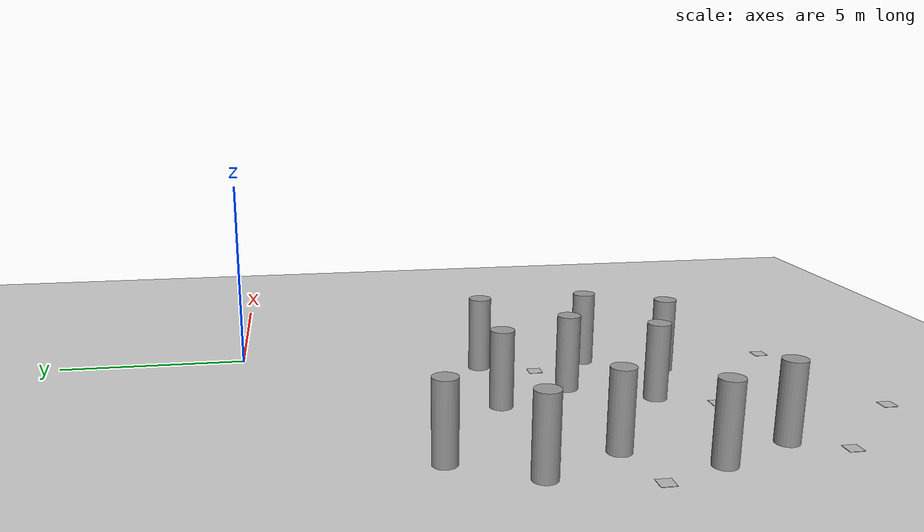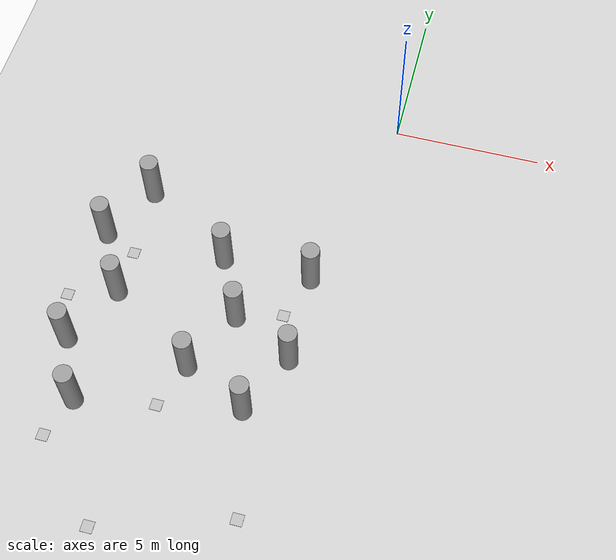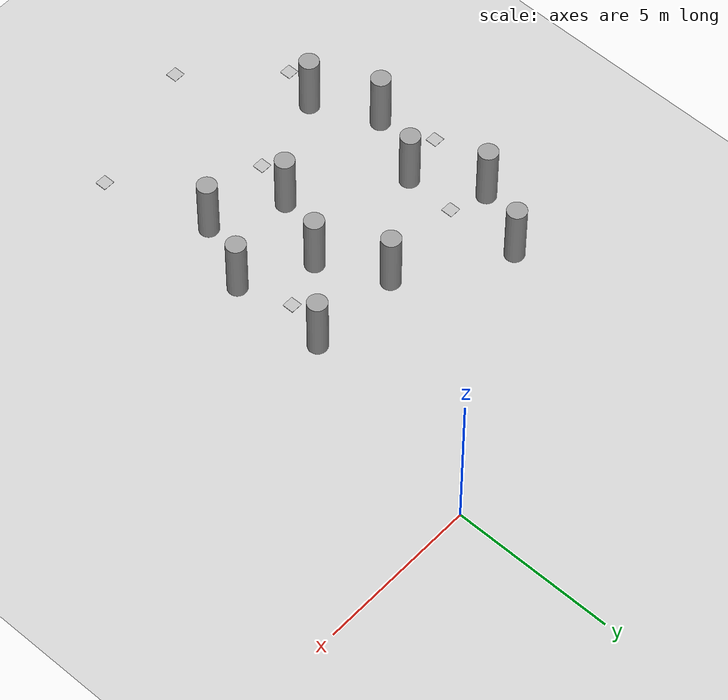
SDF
<sdf version="1.7">
 <world name="default">
  <model name="ground_plane">
   <static>1</static>
   <link name="link">
    <collision name="collision">
     <geometry><plane><normal>0 0 1</normal><size>100 100</size></plane></geometry>
     <surface>
      <contact><collide_bitmask>65535</collide_bitmask></contact>
      <friction><ode><mu>100</mu><mu2>50</mu2></ode></friction>
     </surface>
    </collision>
    <visual name="visual">
     <cast_shadows>0</cast_shadows>
     <geometry><plane><normal>0 0 1</normal><size>100 100</size></plane></geometry>
     <material>
      <script><uri>file://media/materials/scripts/gazebo.material</uri><name>Gazebo/Grey</name></script>
     </material>
    </visual>
   </link>
  </model>
  <model name="SAFMC_Pillar_clone_2_clone_clone">
   <link name="link_3">
    <inertial>
     <mass>1</mass>
     <inertia><ixx>0.145833</ixx><ixy>0</ixy><ixz>0</ixz><iyy>0.145833</iyy><iyz>0</iyz><izz>0.125</izz></inertia>
    </inertial>
    <visual name="visual">
     <geometry><cylinder><radius>0.3</radius><length>2</length></cylinder></geometry>
     <material>
      <lighting>1</lighting>
      <script><uri>file://media/materials/scripts/gazebo.material</uri><name>Gazebo/Grey</name></script>
      <shader type="pixel"><normal_map>__default__</normal_map></shader>
      <ambient>0.3 0.3 0.3 1</ambient>
      <diffuse>0.7 0.7 0.7 1</diffuse>
      <specular>0.01 0.01 0.01 1</specular>
      <emissive>0 0 0 1</emissive>
     </material>
    </visual>
    <collision name="collision">
     <geometry><cylinder><radius>0.3</radius><length>2</length></cylinder></geometry>
     <surface>
      <friction>
       <ode><mu>1</mu><mu2>1</mu2><fdir1>0 0 0</fdir1><slip1>0</slip1><slip2>0</slip2></ode>
       <torsional>
        <coefficient>1</coefficient>
        <patch_radius>0</patch_radius>
        <surface_radius>0</surface_radius>
        <use_patch_radius>1</use_patch_radius>
        <ode><slip>0</slip></ode>
       </torsional>
      </friction>
      <bounce><restitution_coefficient>0</restitution_coefficient><threshold>1e+06</threshold></bounce>
      <contact>
       <collide_without_contact>0</collide_without_contact>
       <collide_without_contact_bitmask>1</collide_without_contact_bitmask>
       <collide_bitmask>1</collide_bitmask>
       <ode>
        <soft_cfm>0</soft_cfm>
        <soft_erp>0.2</soft_erp>
        <kp>1e+13</kp>
        <kd>1</kd>
        <max_vel>0.01</max_vel>
        <min_depth>0</min_depth>
       </ode>
       <bullet>
        <split_impulse>1</split_impulse>
        <split_impulse_penetration_threshold>-0.01</split_impulse_penetration_threshold>
        <soft_cfm>0</soft_cfm>
        <soft_erp>0.2</soft_erp>
        <kp>1e+13</kp>
        <kd>1</kd>
       </bullet>
      </contact>
     </surface>
    </collision>
   </link>
   <static>0</static>
   <pose>-8.45289 -10.5187 0.99999 0 -0 -0.001854</pose>
  </model>
  <model name="SAFMC_Pillar_clone_2_clone_clone_2">
   <link name="link_3">
    <inertial>
     <mass>1</mass>
     <inertia><ixx>0.145833</ixx><ixy>0</ixy><ixz>0</ixz><iyy>0.145833</iyy><iyz>0</iyz><izz>0.125</izz></inertia>
    </inertial>
    <visual name="visual">
     <geometry><cylinder><radius>0.3</radius><length>2</length></cylinder></geometry>
     <material>
      <lighting>1</lighting>
      <script><uri>file://media/materials/scripts/gazebo.material</uri><name>Gazebo/Grey</name></script>
      <shader type="pixel"><normal_map>__default__</normal_map></shader>
      <ambient>0.3 0.3 0.3 1</ambient>
      <diffuse>0.7 0.7 0.7 1</diffuse>
      <specular>0.01 0.01 0.01 1</specular>
      <emissive>0 0 0 1</emissive>
     </material>
    </visual>
    <collision name="collision">
     <geometry><cylinder><radius>0.3</radius><length>2</length></cylinder></geometry>
     <surface>
      <friction>
       <ode><mu>1</mu><mu2>1</mu2><fdir1>0 0 0</fdir1><slip1>0</slip1><slip2>0</slip2></ode>
       <torsional>
        <coefficient>1</coefficient>
        <patch_radius>0</patch_radius>
        <surface_radius>0</surface_radius>
        <use_patch_radius>1</use_patch_radius>
        <ode><slip>0</slip></ode>
       </torsional>
      </friction>
      <bounce><restitution_coefficient>0</restitution_coefficient><threshold>1e+06</threshold></bounce>
      <contact>
       <collide_without_contact>0</collide_without_contact>
       <collide_without_contact_bitmask>1</collide_without_contact_bitmask>
       <collide_bitmask>1</collide_bitmask>
       <ode>
        <soft_cfm>0</soft_cfm>
        <soft_erp>0.2</soft_erp>
        <kp>1e+13</kp>
        <kd>1</kd>
        <max_vel>0.01</max_vel>
        <min_depth>0</min_depth>
       </ode>
       <bullet>
        <split_impulse>1</split_impulse>
        <split_impulse_penetration_threshold>-0.01</split_impulse_penetration_threshold>
        <soft_cfm>0</soft_cfm>
        <soft_erp>0.2</soft_erp>
        <kp>1e+13</kp>
        <kd>1</kd>
       </bullet>
      </contact>
     </surface>
    </collision>
   </link>
   <static>0</static>
   <pose>-7.54039 -12.4443 0.999991 0 -0 1.4e-05</pose>
  </model>
  <model name="SAFMC_Pillar_clone_2_clone_clone_2_clone">
   <link name="link_3">
    <inertial>
     <mass>1</mass>
     <inertia><ixx>0.145833</ixx><ixy>0</ixy><ixz>0</ixz><iyy>0.145833</iyy><iyz>0</iyz><izz>0.125</izz></inertia>
    </inertial>
    <visual name="visual">
     <geometry><cylinder><radius>0.3</radius><length>2</length></cylinder></geometry>
     <material>
      <lighting>1</lighting>
      <script><uri>file://media/materials/scripts/gazebo.material</uri><name>Gazebo/Grey</name></script>
      <shader type="pixel"><normal_map>__default__</normal_map></shader>
      <ambient>0.3 0.3 0.3 1</ambient>
      <diffuse>0.7 0.7 0.7 1</diffuse>
      <specular>0.01 0.01 0.01 1</specular>
      <emissive>0 0 0 1</emissive>
     </material>
    </visual>
    <collision name="collision">
     <geometry><cylinder><radius>0.3</radius><length>2</length></cylinder></geometry>
     <surface>
      <friction>
       <ode><mu>1</mu><mu2>1</mu2><fdir1>0 0 0</fdir1><slip1>0</slip1><slip2>0</slip2></ode>
       <torsional>
        <coefficient>1</coefficient>
        <patch_radius>0</patch_radius>
        <surface_radius>0</surface_radius>
        <use_patch_radius>1</use_patch_radius>
        <ode><slip>0</slip></ode>
       </torsional>
      </friction>
      <bounce><restitution_coefficient>0</restitution_coefficient><threshold>1e+06</threshold></bounce>
      <contact>
       <collide_without_contact>0</collide_without_contact>
       <collide_without_contact_bitmask>1</collide_without_contact_bitmask>
       <collide_bitmask>1</collide_bitmask>
       <ode>
        <soft_cfm>0</soft_cfm>
        <soft_erp>0.2</soft_erp>
        <kp>1e+13</kp>
        <kd>1</kd>
        <max_vel>0.01</max_vel>
        <min_depth>0</min_depth>
       </ode>
       <bullet>
        <split_impulse>1</split_impulse>
        <split_impulse_penetration_threshold>-0.01</split_impulse_penetration_threshold>
        <soft_cfm>0</soft_cfm>
        <soft_erp>0.2</soft_erp>
        <kp>1e+13</kp>
        <kd>1</kd>
       </bullet>
      </contact>
     </surface>
    </collision>
   </link>
   <static>0</static>
   <pose>-7.45364 -8.51037 0.999991 0 -0 1.8e-05</pose>
  </model>
  <model name="SAFMC_Pillar_clone_2_clone_clone_2_clone_0">
   <link name="link_3">
    <inertial>
     <mass>1</mass>
     <inertia><ixx>0.145833</ixx><ixy>0</ixy><ixz>0</ixz><iyy>0.145833</iyy><iyz>0</iyz><izz>0.125</izz></inertia>
    </inertial>
    <visual name="visual">
     <geometry><cylinder><radius>0.3</radius><length>2</length></cylinder></geometry>
     <material>
      <lighting>1</lighting>
      <script><uri>file://media/materials/scripts/gazebo.material</uri><name>Gazebo/Grey</name></script>
      <shader type="pixel"><normal_map>__default__</normal_map></shader>
      <ambient>0.3 0.3 0.3 1</ambient>
      <diffuse>0.7 0.7 0.7 1</diffuse>
      <specular>0.01 0.01 0.01 1</specular>
      <emissive>0 0 0 1</emissive>
     </material>
    </visual>
    <collision name="collision">
     <geometry><cylinder><radius>0.3</radius><length>2</length></cylinder></geometry>
     <surface>
      <friction>
       <ode><mu>1</mu><mu2>1</mu2><fdir1>0 0 0</fdir1><slip1>0</slip1><slip2>0</slip2></ode>
       <torsional>
        <coefficient>1</coefficient>
        <patch_radius>0</patch_radius>
        <surface_radius>0</surface_radius>
        <use_patch_radius>1</use_patch_radius>
        <ode><slip>0</slip></ode>
       </torsional>
      </friction>
      <bounce><restitution_coefficient>0</restitution_coefficient><threshold>1e+06</threshold></bounce>
      <contact>
       <collide_without_contact>0</collide_without_contact>
       <collide_without_contact_bitmask>1</collide_without_contact_bitmask>
       <collide_bitmask>1</collide_bitmask>
       <ode>
        <soft_cfm>0</soft_cfm>
        <soft_erp>0.2</soft_erp>
        <kp>1e+13</kp>
        <kd>1</kd>
        <max_vel>0.01</max_vel>
        <min_depth>0</min_depth>
       </ode>
       <bullet>
        <split_impulse>1</split_impulse>
        <split_impulse_penetration_threshold>-0.01</split_impulse_penetration_threshold>
        <soft_cfm>0</soft_cfm>
        <soft_erp>0.2</soft_erp>
        <kp>1e+13</kp>
        <kd>1</kd>
       </bullet>
      </contact>
     </surface>
    </collision>
   </link>
   <static>0</static>
   <pose>-8.50627 -6.53262 0.999991 0 -0 1.2e-05</pose>
  </model>
  <model name="SAFMC_Pillar_clone_2_clone_clone_2_clone_1">
   <link name="link_3">
    <inertial>
     <mass>1</mass>
     <inertia><ixx>0.145833</ixx><ixy>0</ixy><ixz>0</ixz><iyy>0.145833</iyy><iyz>0</iyz><izz>0.125</izz></inertia>
    </inertial>
    <visual name="visual">
     <geometry><cylinder><radius>0.3</radius><length>2</length></cylinder></geometry>
     <material>
      <lighting>1</lighting>
      <script><uri>file://media/materials/scripts/gazebo.material</uri><name>Gazebo/Grey</name></script>
      <shader type="pixel"><normal_map>__default__</normal_map></shader>
      <ambient>0.3 0.3 0.3 1</ambient>
      <diffuse>0.7 0.7 0.7 1</diffuse>
      <specular>0.01 0.01 0.01 1</specular>
      <emissive>0 0 0 1</emissive>
     </material>
    </visual>
    <collision name="collision">
     <geometry><cylinder><radius>0.3</radius><length>2</length></cylinder></geometry>
     <surface>
      <friction>
       <ode><mu>1</mu><mu2>1</mu2><fdir1>0 0 0</fdir1><slip1>0</slip1><slip2>0</slip2></ode>
       <torsional>
        <coefficient>1</coefficient>
        <patch_radius>0</patch_radius>
        <surface_radius>0</surface_radius>
        <use_patch_radius>1</use_patch_radius>
        <ode><slip>0</slip></ode>
       </torsional>
      </friction>
      <bounce><restitution_coefficient>0</restitution_coefficient><threshold>1e+06</threshold></bounce>
      <contact>
       <collide_without_contact>0</collide_without_contact>
       <collide_without_contact_bitmask>1</collide_without_contact_bitmask>
       <collide_bitmask>1</collide_bitmask>
       <ode>
        <soft_cfm>0</soft_cfm>
        <soft_erp>0.2</soft_erp>
        <kp>1e+13</kp>
        <kd>1</kd>
        <max_vel>0.01</max_vel>
        <min_depth>0</min_depth>
       </ode>
       <bullet>
        <split_impulse>1</split_impulse>
        <split_impulse_penetration_threshold>-0.01</split_impulse_penetration_threshold>
        <soft_cfm>0</soft_cfm>
        <soft_erp>0.2</soft_erp>
        <kp>1e+13</kp>
        <kd>1</kd>
       </bullet>
      </contact>
     </surface>
    </collision>
   </link>
   <static>0</static>
   <pose>-7.48392 -4.59474 0.999999 0 -0 1.2e-05</pose>
  </model>
  <model name="SAFMC_Pillar_clone_2_clone_clone_2_clone_2_clone_3">
   <link name="link_3">
    <inertial>
     <mass>1</mass>
     <inertia><ixx>0.145833</ixx><ixy>0</ixy><ixz>0</ixz><iyy>0.145833</iyy><iyz>0</iyz><izz>0.125</izz></inertia>
    </inertial>
    <visual name="visual">
     <geometry><cylinder><radius>0.3</radius><length>2</length></cylinder></geometry>
     <material>
      <lighting>1</lighting>
      <script><uri>file://media/materials/scripts/gazebo.material</uri><name>Gazebo/Grey</name></script>
      <shader type="pixel"><normal_map>__default__</normal_map></shader>
      <ambient>0.3 0.3 0.3 1</ambient>
      <diffuse>0.7 0.7 0.7 1</diffuse>
      <specular>0.01 0.01 0.01 1</specular>
      <emissive>0 0 0 1</emissive>
     </material>
    </visual>
    <collision name="collision">
     <geometry><cylinder><radius>0.3</radius><length>2</length></cylinder></geometry>
     <surface>
      <friction>
       <ode><mu>1</mu><mu2>1</mu2><fdir1>0 0 0</fdir1><slip1>0</slip1><slip2>0</slip2></ode>
       <torsional>
        <coefficient>1</coefficient>
        <patch_radius>0</patch_radius>
        <surface_radius>0</surface_radius>
        <use_patch_radius>1</use_patch_radius>
        <ode><slip>0</slip></ode>
       </torsional>
      </friction>
      <bounce><restitution_coefficient>0</restitution_coefficient><threshold>1e+06</threshold></bounce>
      <contact>
       <collide_without_contact>0</collide_without_contact>
       <collide_without_contact_bitmask>1</collide_without_contact_bitmask>
       <collide_bitmask>1</collide_bitmask>
       <ode>
        <soft_cfm>0</soft_cfm>
        <soft_erp>0.2</soft_erp>
        <kp>1e+13</kp>
        <kd>1</kd>
        <max_vel>0.01</max_vel>
        <min_depth>0</min_depth>
       </ode>
       <bullet>
        <split_impulse>1</split_impulse>
        <split_impulse_penetration_threshold>-0.01</split_impulse_penetration_threshold>
        <soft_cfm>0</soft_cfm>
        <soft_erp>0.2</soft_erp>
        <kp>1e+13</kp>
        <kd>1</kd>
       </bullet>
      </contact>
     </surface>
    </collision>
   </link>
   <static>0</static>
   <pose>-1.42308 -9.50432 0.999991 0 -0 2.2e-05</pose>
  </model>
  <model name="SAFMC_Pillar_clone_2_clone_clone_2_clone_2_clone_4">
   <link name="link_3">
    <inertial>
     <mass>1</mass>
     <inertia><ixx>0.145833</ixx><ixy>0</ixy><ixz>0</ixz><iyy>0.145833</iyy><iyz>0</iyz><izz>0.125</izz></inertia>
    </inertial>
    <visual name="visual">
     <geometry><cylinder><radius>0.3</radius><length>2</length></cylinder></geometry>
     <material>
      <lighting>1</lighting>
      <script><uri>file://media/materials/scripts/gazebo.material</uri><name>Gazebo/Grey</name></script>
      <shader type="pixel"><normal_map>__default__</normal_map></shader>
      <ambient>0.3 0.3 0.3 1</ambient>
      <diffuse>0.7 0.7 0.7 1</diffuse>
      <specular>0.01 0.01 0.01 1</specular>
      <emissive>0 0 0 1</emissive>
     </material>
    </visual>
    <collision name="collision">
     <geometry><cylinder><radius>0.3</radius><length>2</length></cylinder></geometry>
     <surface>
      <friction>
       <ode><mu>1</mu><mu2>1</mu2><fdir1>0 0 0</fdir1><slip1>0</slip1><slip2>0</slip2></ode>
       <torsional>
        <coefficient>1</coefficient>
        <patch_radius>0</patch_radius>
        <surface_radius>0</surface_radius>
        <use_patch_radius>1</use_patch_radius>
        <ode><slip>0</slip></ode>
       </torsional>
      </friction>
      <bounce><restitution_coefficient>0</restitution_coefficient><threshold>1e+06</threshold></bounce>
      <contact>
       <collide_without_contact>0</collide_without_contact>
       <collide_without_contact_bitmask>1</collide_without_contact_bitmask>
       <collide_bitmask>1</collide_bitmask>
       <ode>
        <soft_cfm>0</soft_cfm>
        <soft_erp>0.2</soft_erp>
        <kp>1e+13</kp>
        <kd>1</kd>
        <max_vel>0.01</max_vel>
        <min_depth>0</min_depth>
       </ode>
       <bullet>
        <split_impulse>1</split_impulse>
        <split_impulse_penetration_threshold>-0.01</split_impulse_penetration_threshold>
        <soft_cfm>0</soft_cfm>
        <soft_erp>0.2</soft_erp>
        <kp>1e+13</kp>
        <kd>1</kd>
       </bullet>
      </contact>
     </surface>
    </collision>
   </link>
   <static>0</static>
   <pose>-3.45985 -8.47274 0.999997 0 -0 1.3e-05</pose>
  </model>
  <model name="SAFMC_Pillar_clone_2_clone_clone_2_clone_2_clone_5">
   <link name="link_3">
    <inertial>
     <mass>1</mass>
     <inertia><ixx>0.145833</ixx><ixy>0</ixy><ixz>0</ixz><iyy>0.145833</iyy><iyz>0</iyz><izz>0.125</izz></inertia>
    </inertial>
    <visual name="visual">
     <geometry><cylinder><radius>0.3</radius><length>2</length></cylinder></geometry>
     <material>
      <lighting>1</lighting>
      <script><uri>file://media/materials/scripts/gazebo.material</uri><name>Gazebo/Grey</name></script>
      <shader type="pixel"><normal_map>__default__</normal_map></shader>
      <ambient>0.3 0.3 0.3 1</ambient>
      <diffuse>0.7 0.7 0.7 1</diffuse>
      <specular>0.01 0.01 0.01 1</specular>
      <emissive>0 0 0 1</emissive>
     </material>
    </visual>
    <collision name="collision">
     <geometry><cylinder><radius>0.3</radius><length>2</length></cylinder></geometry>
     <surface>
      <friction>
       <ode><mu>1</mu><mu2>1</mu2><fdir1>0 0 0</fdir1><slip1>0</slip1><slip2>0</slip2></ode>
       <torsional>
        <coefficient>1</coefficient>
        <patch_radius>0</patch_radius>
        <surface_radius>0</surface_radius>
        <use_patch_radius>1</use_patch_radius>
        <ode><slip>0</slip></ode>
       </torsional>
      </friction>
      <bounce><restitution_coefficient>0</restitution_coefficient><threshold>1e+06</threshold></bounce>
      <contact>
       <collide_without_contact>0</collide_without_contact>
       <collide_without_contact_bitmask>1</collide_without_contact_bitmask>
       <collide_bitmask>1</collide_bitmask>
       <ode>
        <soft_cfm>0</soft_cfm>
        <soft_erp>0.2</soft_erp>
        <kp>1e+13</kp>
        <kd>1</kd>
        <max_vel>0.01</max_vel>
        <min_depth>0</min_depth>
       </ode>
       <bullet>
        <split_impulse>1</split_impulse>
        <split_impulse_penetration_threshold>-0.01</split_impulse_penetration_threshold>
        <soft_cfm>0</soft_cfm>
        <soft_erp>0.2</soft_erp>
        <kp>1e+13</kp>
        <kd>1</kd>
       </bullet>
      </contact>
     </surface>
    </collision>
   </link>
   <static>0</static>
   <pose>-1.48133 -6.52721 0.999999 0 0 -1.3e-05</pose>
  </model>
  <model name="SAFMC_Pillar_clone_2_clone_clone_2_clone_2_clone_6">
   <link name="link_3">
    <inertial>
     <mass>1</mass>
     <inertia><ixx>0.145833</ixx><ixy>0</ixy><ixz>0</ixz><iyy>0.145833</iyy><iyz>0</iyz><izz>0.125</izz></inertia>
    </inertial>
    <visual name="visual">
     <geometry><cylinder><radius>0.3</radius><length>2</length></cylinder></geometry>
     <material>
      <lighting>1</lighting>
      <script><uri>file://media/materials/scripts/gazebo.material</uri><name>Gazebo/Grey</name></script>
      <shader type="pixel"><normal_map>__default__</normal_map></shader>
      <ambient>0.3 0.3 0.3 1</ambient>
      <diffuse>0.7 0.7 0.7 1</diffuse>
      <specular>0.01 0.01 0.01 1</specular>
      <emissive>0 0 0 1</emissive>
     </material>
    </visual>
    <collision name="collision">
     <geometry><cylinder><radius>0.3</radius><length>2</length></cylinder></geometry>
     <surface>
      <friction>
       <ode><mu>1</mu><mu2>1</mu2><fdir1>0 0 0</fdir1><slip1>0</slip1><slip2>0</slip2></ode>
       <torsional>
        <coefficient>1</coefficient>
        <patch_radius>0</patch_radius>
        <surface_radius>0</surface_radius>
        <use_patch_radius>1</use_patch_radius>
        <ode><slip>0</slip></ode>
       </torsional>
      </friction>
      <bounce><restitution_coefficient>0</restitution_coefficient><threshold>1e+06</threshold></bounce>
      <contact>
       <collide_without_contact>0</collide_without_contact>
       <collide_without_contact_bitmask>1</collide_without_contact_bitmask>
       <collide_bitmask>1</collide_bitmask>
       <ode>
        <soft_cfm>0</soft_cfm>
        <soft_erp>0.2</soft_erp>
        <kp>1e+13</kp>
        <kd>1</kd>
        <max_vel>0.01</max_vel>
        <min_depth>0</min_depth>
       </ode>
       <bullet>
        <split_impulse>1</split_impulse>
        <split_impulse_penetration_threshold>-0.01</split_impulse_penetration_threshold>
        <soft_cfm>0</soft_cfm>
        <soft_erp>0.2</soft_erp>
        <kp>1e+13</kp>
        <kd>1</kd>
       </bullet>
      </contact>
     </surface>
    </collision>
   </link>
   <static>0</static>
   <pose>-4.45723 -10.5145 1 0 -0 1.9e-05</pose>
  </model>
  <model name="SAFMC_Pillar_clone_2_clone_clone_2_clone_2_clone_10">
   <link name="link_3">
    <inertial>
     <mass>1</mass>
     <inertia><ixx>0.145833</ixx><ixy>0</ixy><ixz>0</ixz><iyy>0.145833</iyy><iyz>0</iyz><izz>0.125</izz></inertia>
    </inertial>
    <visual name="visual">
     <geometry><cylinder><radius>0.3</radius><length>2</length></cylinder></geometry>
     <material>
      <lighting>1</lighting>
      <script><uri>file://media/materials/scripts/gazebo.material</uri><name>Gazebo/Grey</name></script>
      <shader type="pixel"><normal_map>__default__</normal_map></shader>
      <ambient>0.3 0.3 0.3 1</ambient>
      <diffuse>0.7 0.7 0.7 1</diffuse>
      <specular>0.01 0.01 0.01 1</specular>
      <emissive>0 0 0 1</emissive>
     </material>
    </visual>
    <collision name="collision">
     <geometry><cylinder><radius>0.3</radius><length>2</length></cylinder></geometry>
     <surface>
      <friction>
       <ode><mu>1</mu><mu2>1</mu2><fdir1>0 0 0</fdir1><slip1>0</slip1><slip2>0</slip2></ode>
       <torsional>
        <coefficient>1</coefficient>
        <patch_radius>0</patch_radius>
        <surface_radius>0</surface_radius>
        <use_patch_radius>1</use_patch_radius>
        <ode><slip>0</slip></ode>
       </torsional>
      </friction>
      <bounce><restitution_coefficient>0</restitution_coefficient><threshold>1e+06</threshold></bounce>
      <contact>
       <collide_without_contact>0</collide_without_contact>
       <collide_without_contact_bitmask>1</collide_without_contact_bitmask>
       <collide_bitmask>1</collide_bitmask>
       <ode>
        <soft_cfm>0</soft_cfm>
        <soft_erp>0.2</soft_erp>
        <kp>1e+13</kp>
        <kd>1</kd>
        <max_vel>0.01</max_vel>
        <min_depth>0</min_depth>
       </ode>
       <bullet>
        <split_impulse>1</split_impulse>
        <split_impulse_penetration_threshold>-0.01</split_impulse_penetration_threshold>
        <soft_cfm>0</soft_cfm>
        <soft_erp>0.2</soft_erp>
        <kp>1e+13</kp>
        <kd>1</kd>
       </bullet>
      </contact>
     </surface>
    </collision>
   </link>
   <static>0</static>
   <pose>-4.43398 -6.502 0.999993 0 -0 1.2e-05</pose>
  </model>
  <model name="SAFMC_Pillar_clone_2_clone_clone_2_clone_2_clone_9">
   <link name="link_3">
    <inertial>
     <mass>1</mass>
     <inertia><ixx>0.145833</ixx><ixy>0</ixy><ixz>0</ixz><iyy>0.145833</iyy><iyz>0</iyz><izz>0.125</izz></inertia>
    </inertial>
    <visual name="visual">
     <geometry><cylinder><radius>0.3</radius><length>2</length></cylinder></geometry>
     <material>
      <lighting>1</lighting>
      <script><uri>file://media/materials/scripts/gazebo.material</uri><name>Gazebo/Grey</name></script>
      <shader type="pixel"><normal_map>__default__</normal_map></shader>
      <ambient>0.3 0.3 0.3 1</ambient>
      <diffuse>0.7 0.7 0.7 1</diffuse>
      <specular>0.01 0.01 0.01 1</specular>
      <emissive>0 0 0 1</emissive>
     </material>
    </visual>
    <collision name="collision">
     <geometry><cylinder><radius>0.3</radius><length>2</length></cylinder></geometry>
     <surface>
      <friction>
       <ode><mu>1</mu><mu2>1</mu2><fdir1>0 0 0</fdir1><slip1>0</slip1><slip2>0</slip2></ode>
       <torsional>
        <coefficient>1</coefficient>
        <patch_radius>0</patch_radius>
        <surface_radius>0</surface_radius>
        <use_patch_radius>1</use_patch_radius>
        <ode><slip>0</slip></ode>
       </torsional>
      </friction>
      <bounce><restitution_coefficient>0</restitution_coefficient><threshold>1e+06</threshold></bounce>
      <contact>
       <collide_without_contact>0</collide_without_contact>
       <collide_without_contact_bitmask>1</collide_without_contact_bitmask>
       <collide_bitmask>1</collide_bitmask>
       <ode>
        <soft_cfm>0</soft_cfm>
        <soft_erp>0.2</soft_erp>
        <kp>1e+13</kp>
        <kd>1</kd>
        <max_vel>0.01</max_vel>
        <min_depth>0</min_depth>
       </ode>
       <bullet>
        <split_impulse>1</split_impulse>
        <split_impulse_penetration_threshold>-0.01</split_impulse_penetration_threshold>
        <soft_cfm>0</soft_cfm>
        <soft_erp>0.2</soft_erp>
        <kp>1e+13</kp>
        <kd>1</kd>
       </bullet>
      </contact>
     </surface>
    </collision>
   </link>
   <static>0</static>
   <pose>-2.36713 -11.5025 0.999991 0 -0 1.1e-05</pose>
  </model>
  <model name="Tag36h11_0">
   <static>1</static>
   <link name="link">
    <collision name="collision"><geometry><box><size>0.3702 0.3702 0.01</size></box></geometry></collision>
    <visual name="visual">
     <cast_shadows>0</cast_shadows>
     <geometry><box><size>0.3702 0.3702 0.01</size></box></geometry>
     <material>
      <script>
       <uri>model://Tag36h11_0/materials/scripts</uri>
       <uri>model://Tag36h11_0/materials/textures</uri>
       <name>Tag36h11_0</name>
      </script>
     </material>
    </visual>
   </link>
   <pose>-2.01243 -7.98372 0 0 -0 0</pose>
  </model>
  <model name="Tag36h11_0_clone_1">
   <static>1</static>
   <link name="link">
    <collision name="collision"><geometry><box><size>0.3702 0.3702 0.01</size></box></geometry></collision>
    <visual name="visual">
     <cast_shadows>0</cast_shadows>
     <geometry><box><size>0.3702 0.3702 0.01</size></box></geometry>
     <material>
      <script>
       <uri>model://Tag36h11_0/materials/scripts</uri>
       <uri>model://Tag36h11_0/materials/textures</uri>
       <name>Tag36h11_0</name>
      </script>
     </material>
    </visual>
   </link>
   <pose>-5.77083 -16.1173 0 0 -0 0</pose>
  </model>
  <model name="Tag36h11_0_clone_2">
   <static>1</static>
   <link name="link">
    <collision name="collision"><geometry><box><size>0.3702 0.3702 0.01</size></box></geometry></collision>
    <visual name="visual">
     <cast_shadows>0</cast_shadows>
     <geometry><box><size>0.3702 0.3702 0.01</size></box></geometry>
     <material>
      <script>
       <uri>model://Tag36h11_0/materials/scripts</uri>
       <uri>model://Tag36h11_0/materials/textures</uri>
       <name>Tag36h11_0</name>
      </script>
     </material>
    </visual>
   </link>
   <pose>-9.04675 -8.95563 0 0 -0 0</pose>
  </model>
  <model name="Tag36h11_0_clone_3">
   <static>1</static>
   <link name="link">
    <collision name="collision"><geometry><box><size>0.3702 0.3702 0.01</size></box></geometry></collision>
    <visual name="visual">
     <cast_shadows>0</cast_shadows>
     <geometry><box><size>0.3702 0.3702 0.01</size></box></geometry>
     <material>
      <script>
       <uri>model://Tag36h11_0/materials/scripts</uri>
       <uri>model://Tag36h11_0/materials/textures</uri>
       <name>Tag36h11_0</name>
      </script>
     </material>
    </visual>
   </link>
   <pose>-5.0173 -11.9536 0 0 -0 0</pose>
  </model>
  <model name="Tag36h11_0_clone_4">
   <static>1</static>
   <link name="link">
    <collision name="collision"><geometry><box><size>0.3702 0.3702 0.01</size></box></geometry></collision>
    <visual name="visual">
     <cast_shadows>0</cast_shadows>
     <geometry><box><size>0.3702 0.3702 0.01</size></box></geometry>
     <material>
      <script>
       <uri>model://Tag36h11_0/materials/scripts</uri>
       <uri>model://Tag36h11_0/materials/textures</uri>
       <name>Tag36h11_0</name>
      </script>
     </material>
    </visual>
   </link>
   <pose>-1.56564 -14.828 0 0 -0 0</pose>
  </model>
  <model name="Tag36h11_1_clone_0">
   <static>1</static>
   <link name="link">
    <collision name="collision"><geometry><box><size>0.3702 0.3702 0.01</size></box></geometry></collision>
    <visual name="visual">
     <cast_shadows>0</cast_shadows>
     <geometry><box><size>0.3702 0.3702 0.01</size></box></geometry>
     <material>
      <script>
       <uri>model://Tag36h11_1/materials/scripts</uri>
       <uri>model://Tag36h11_1/materials/textures</uri>
       <name>Tag36h11_1</name>
      </script>
     </material>
    </visual>
   </link>
   <pose>-7.45317 -6.94374 0 0 -0 0</pose>
  </model>
  <model name="Tag36h11_1_clone_1">
   <static>1</static>
   <link name="link">
    <collision name="collision"><geometry><box><size>0.3702 0.3702 0.01</size></box></geometry></collision>
    <visual name="visual">
     <cast_shadows>0</cast_shadows>
     <geometry><box><size>0.3702 0.3702 0.01</size></box></geometry>
     <material>
      <script>
       <uri>model://Tag36h11_1/materials/scripts</uri>
       <uri>model://Tag36h11_1/materials/textures</uri>
       <name>Tag36h11_1</name>
      </script>
     </material>
    </visual>
   </link>
   <pose>-8.06877 -13.7453 0 0 -0 0</pose>
  </model>
 </world>
</sdf>
